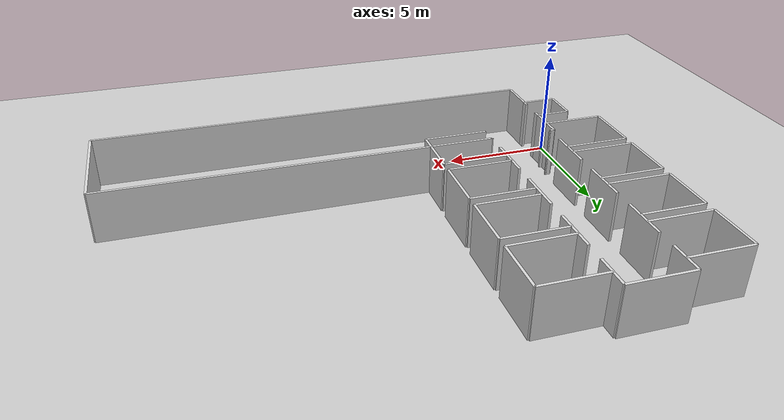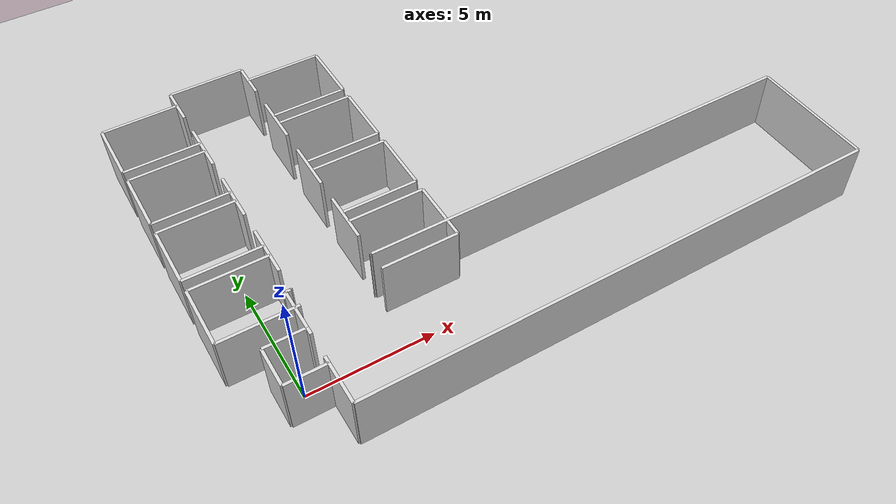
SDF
<?xml version="1.0" ?>
<sdf version="1.6">
  <world name="kku_f2">
    <include><uri>model://sun</uri></include>
    <include><uri>model://ground_plane</uri></include>
    <physics name="default_physics" default="0" type="ode">
      <max_step_size>0.001</max_step_size>
      <real_time_factor>1.0</real_time_factor>
      <real_time_update_rate>1000</real_time_update_rate>
    </physics>
    <scene>
      <ambient>0.4 0.4 0.4 1</ambient>
      <background>0.7 0.7 0.7 1</background>
      <shadows>true</shadows>
    </scene>
    <!-- 동적 장애물(보행자)을 set_entity_state 로 위치제어하기 위한 플러그인 -->
    <plugin name="gazebo_ros_state" filename="libgazebo_ros_state.so">
      <ros><namespace>/gazebo</namespace></ros>
      <update_rate>50.0</update_rate>
    </plugin>
    <model name="kku_f2_building">
      <static>true</static>
      <link name="walls">
        <collision name="f2_elev_n">
          <pose>0 0.8 1.2 0 0 0</pose>
          <geometry><box><size>1.6 0.12 2.4</size></box></geometry>
        </collision>
        <visual name="f2_elev_n_v">
          <pose>0 0.8 1.2 0 0 0</pose>
          <geometry><box><size>1.6 0.12 2.4</size></box></geometry>
          <material><ambient>0.7 0.7 0.7 1</ambient><diffuse>0.85 0.85 0.85 1</diffuse></material>
        </visual>
        <collision name="f2_elev_s">
          <pose>0 -0.8 1.2 0 0 0</pose>
          <geometry><box><size>1.6 0.12 2.4</size></box></geometry>
        </collision>
        <visual name="f2_elev_s_v">
          <pose>0 -0.8 1.2 0 0 0</pose>
          <geometry><box><size>1.6 0.12 2.4</size></box></geometry>
          <material><ambient>0.7 0.7 0.7 1</ambient><diffuse>0.85 0.85 0.85 1</diffuse></material>
        </visual>
        <collision name="f2_elev_w">
          <pose>-0.8 0 1.2 0 0 0</pose>
          <geometry><box><size>0.12 1.6 2.4</size></box></geometry>
        </collision>
        <visual name="f2_elev_w_v">
          <pose>-0.8 0 1.2 0 0 0</pose>
          <geometry><box><size>0.12 1.6 2.4</size></box></geometry>
          <material><ambient>0.7 0.7 0.7 1</ambient><diffuse>0.85 0.85 0.85 1</diffuse></material>
        </visual>
        <collision name="f2_elev_e_s">
          <pose>0.8 -0.65 1.2 0 0 0</pose>
          <geometry><box><size>0.12 0.3 2.4</size></box></geometry>
        </collision>
        <visual name="f2_elev_e_s_v">
          <pose>0.8 -0.65 1.2 0 0 0</pose>
          <geometry><box><size>0.12 0.3 2.4</size></box></geometry>
          <material><ambient>0.7 0.7 0.7 1</ambient><diffuse>0.85 0.85 0.85 1</diffuse></material>
        </visual>
        <collision name="f2_elev_e_n">
          <pose>0.8 0.65 1.2 0 0 0</pose>
          <geometry><box><size>0.12 0.3 2.4</size></box></geometry>
        </collision>
        <visual name="f2_elev_e_n_v">
          <pose>0.8 0.65 1.2 0 0 0</pose>
          <geometry><box><size>0.12 0.3 2.4</size></box></geometry>
          <material><ambient>0.7 0.7 0.7 1</ambient><diffuse>0.85 0.85 0.85 1</diffuse></material>
        </visual>
        <collision name="f2_shoulder_n">
          <pose>0.8 1.65 1.2 0 0 0</pose>
          <geometry><box><size>0.12 1.7 2.4</size></box></geometry>
        </collision>
        <visual name="f2_shoulder_n_v">
          <pose>0.8 1.65 1.2 0 0 0</pose>
          <geometry><box><size>0.12 1.7 2.4</size></box></geometry>
          <material><ambient>0.7 0.7 0.7 1</ambient><diffuse>0.85 0.85 0.85 1</diffuse></material>
        </visual>
        <collision name="f2_shoulder_s">
          <pose>0.8 -1.65 1.2 0 0 0</pose>
          <geometry><box><size>0.12 1.7 2.4</size></box></geometry>
        </collision>
        <visual name="f2_shoulder_s_v">
          <pose>0.8 -1.65 1.2 0 0 0</pose>
          <geometry><box><size>0.12 1.7 2.4</size></box></geometry>
          <material><ambient>0.7 0.7 0.7 1</ambient><diffuse>0.85 0.85 0.85 1</diffuse></material>
        </visual>
        <collision name="f2_rc_n_w">
          <pose>0.9 2.5 1.2 0 0 0</pose>
          <geometry><box><size>0.2 0.12 2.4</size></box></geometry>
        </collision>
        <visual name="f2_rc_n_w_v">
          <pose>0.9 2.5 1.2 0 0 0</pose>
          <geometry><box><size>0.2 0.12 2.4</size></box></geometry>
          <material><ambient>0.7 0.7 0.7 1</ambient><diffuse>0.85 0.85 0.85 1</diffuse></material>
        </visual>
        <collision name="f2_rc_n_e">
          <pose>13 2.5 1.2 0 0 0</pose>
          <geometry><box><size>18 0.12 2.4</size></box></geometry>
        </collision>
        <visual name="f2_rc_n_e_v">
          <pose>13 2.5 1.2 0 0 0</pose>
          <geometry><box><size>18 0.12 2.4</size></box></geometry>
          <material><ambient>0.7 0.7 0.7 1</ambient><diffuse>0.85 0.85 0.85 1</diffuse></material>
        </visual>
        <collision name="f2_rc_s">
          <pose>11.4 -2.5 1.2 0 0 0</pose>
          <geometry><box><size>21.2 0.12 2.4</size></box></geometry>
        </collision>
        <visual name="f2_rc_s_v">
          <pose>11.4 -2.5 1.2 0 0 0</pose>
          <geometry><box><size>21.2 0.12 2.4</size></box></geometry>
          <material><ambient>0.7 0.7 0.7 1</ambient><diffuse>0.85 0.85 0.85 1</diffuse></material>
        </visual>
        <collision name="f2_rc_end">
          <pose>22 0 1.2 0 0 0</pose>
          <geometry><box><size>0.12 5 2.4</size></box></geometry>
        </collision>
        <visual name="f2_rc_end_v">
          <pose>22 0 1.2 0 0 0</pose>
          <geometry><box><size>0.12 5 2.4</size></box></geometry>
          <material><ambient>0.7 0.7 0.7 1</ambient><diffuse>0.85 0.85 0.85 1</diffuse></material>
        </visual>
        <collision name="f2_bc_w_0">
          <pose>1 2.525 1.2 0 0 0</pose>
          <geometry><box><size>0.12 0.05 2.4</size></box></geometry>
        </collision>
        <visual name="f2_bc_w_0_v">
          <pose>1 2.525 1.2 0 0 0</pose>
          <geometry><box><size>0.12 0.05 2.4</size></box></geometry>
          <material><ambient>0.7 0.7 0.7 1</ambient><diffuse>0.85 0.85 0.85 1</diffuse></material>
        </visual>
        <collision name="f2_bc_w_1">
          <pose>1 4.5 1.2 0 0 0</pose>
          <geometry><box><size>0.12 2.1 2.4</size></box></geometry>
        </collision>
        <visual name="f2_bc_w_1_v">
          <pose>1 4.5 1.2 0 0 0</pose>
          <geometry><box><size>0.12 2.1 2.4</size></box></geometry>
          <material><ambient>0.7 0.7 0.7 1</ambient><diffuse>0.85 0.85 0.85 1</diffuse></material>
        </visual>
        <collision name="f2_bc_w_2">
          <pose>1 7.5 1.2 0 0 0</pose>
          <geometry><box><size>0.12 2.1 2.4</size></box></geometry>
        </collision>
        <visual name="f2_bc_w_2_v">
          <pose>1 7.5 1.2 0 0 0</pose>
          <geometry><box><size>0.12 2.1 2.4</size></box></geometry>
          <material><ambient>0.7 0.7 0.7 1</ambient><diffuse>0.85 0.85 0.85 1</diffuse></material>
        </visual>
        <collision name="f2_bc_w_3">
          <pose>1 10.5 1.2 0 0 0</pose>
          <geometry><box><size>0.12 2.1 2.4</size></box></geometry>
        </collision>
        <visual name="f2_bc_w_3_v">
          <pose>1 10.5 1.2 0 0 0</pose>
          <geometry><box><size>0.12 2.1 2.4</size></box></geometry>
          <material><ambient>0.7 0.7 0.7 1</ambient><diffuse>0.85 0.85 0.85 1</diffuse></material>
        </visual>
        <collision name="f2_bc_w_4">
          <pose>1 13.22 1.2 0 0 0</pose>
          <geometry><box><size>0.12 1.55 2.4</size></box></geometry>
        </collision>
        <visual name="f2_bc_w_4_v">
          <pose>1 13.22 1.2 0 0 0</pose>
          <geometry><box><size>0.12 1.55 2.4</size></box></geometry>
          <material><ambient>0.7 0.7 0.7 1</ambient><diffuse>0.85 0.85 0.85 1</diffuse></material>
        </visual>
        <collision name="f2_bc_e_0">
          <pose>4 2.525 1.2 0 0 0</pose>
          <geometry><box><size>0.12 0.05 2.4</size></box></geometry>
        </collision>
        <visual name="f2_bc_e_0_v">
          <pose>4 2.525 1.2 0 0 0</pose>
          <geometry><box><size>0.12 0.05 2.4</size></box></geometry>
          <material><ambient>0.7 0.7 0.7 1</ambient><diffuse>0.85 0.85 0.85 1</diffuse></material>
        </visual>
        <collision name="f2_bc_e_1">
          <pose>4 4.5 1.2 0 0 0</pose>
          <geometry><box><size>0.12 2.1 2.4</size></box></geometry>
        </collision>
        <visual name="f2_bc_e_1_v">
          <pose>4 4.5 1.2 0 0 0</pose>
          <geometry><box><size>0.12 2.1 2.4</size></box></geometry>
          <material><ambient>0.7 0.7 0.7 1</ambient><diffuse>0.85 0.85 0.85 1</diffuse></material>
        </visual>
        <collision name="f2_bc_e_2">
          <pose>4 7.5 1.2 0 0 0</pose>
          <geometry><box><size>0.12 2.1 2.4</size></box></geometry>
        </collision>
        <visual name="f2_bc_e_2_v">
          <pose>4 7.5 1.2 0 0 0</pose>
          <geometry><box><size>0.12 2.1 2.4</size></box></geometry>
          <material><ambient>0.7 0.7 0.7 1</ambient><diffuse>0.85 0.85 0.85 1</diffuse></material>
        </visual>
        <collision name="f2_bc_e_3">
          <pose>4 10.5 1.2 0 0 0</pose>
          <geometry><box><size>0.12 2.1 2.4</size></box></geometry>
        </collision>
        <visual name="f2_bc_e_3_v">
          <pose>4 10.5 1.2 0 0 0</pose>
          <geometry><box><size>0.12 2.1 2.4</size></box></geometry>
          <material><ambient>0.7 0.7 0.7 1</ambient><diffuse>0.85 0.85 0.85 1</diffuse></material>
        </visual>
        <collision name="f2_bc_e_4">
          <pose>4 13.22 1.2 0 0 0</pose>
          <geometry><box><size>0.12 1.55 2.4</size></box></geometry>
        </collision>
        <visual name="f2_bc_e_4_v">
          <pose>4 13.22 1.2 0 0 0</pose>
          <geometry><box><size>0.12 1.55 2.4</size></box></geometry>
          <material><ambient>0.7 0.7 0.7 1</ambient><diffuse>0.85 0.85 0.85 1</diffuse></material>
        </visual>
        <collision name="f2_bc_end">
          <pose>2.5 14 1.2 0 0 0</pose>
          <geometry><box><size>3 0.12 2.4</size></box></geometry>
        </collision>
        <visual name="f2_bc_end_v">
          <pose>2.5 14 1.2 0 0 0</pose>
          <geometry><box><size>3 0.12 2.4</size></box></geometry>
          <material><ambient>0.7 0.7 0.7 1</ambient><diffuse>0.85 0.85 0.85 1</diffuse></material>
        </visual>
        <collision name="f2_r201_s">
          <pose>-0.5 1.75 1.2 0 0 0</pose>
          <geometry><box><size>3 0.12 2.4</size></box></geometry>
        </collision>
        <visual name="f2_r201_s_v">
          <pose>-0.5 1.75 1.2 0 0 0</pose>
          <geometry><box><size>3 0.12 2.4</size></box></geometry>
          <material><ambient>0.7 0.7 0.7 1</ambient><diffuse>0.85 0.85 0.85 1</diffuse></material>
        </visual>
        <collision name="f2_r201_n">
          <pose>-0.5 4.25 1.2 0 0 0</pose>
          <geometry><box><size>3 0.12 2.4</size></box></geometry>
        </collision>
        <visual name="f2_r201_n_v">
          <pose>-0.5 4.25 1.2 0 0 0</pose>
          <geometry><box><size>3 0.12 2.4</size></box></geometry>
          <material><ambient>0.7 0.7 0.7 1</ambient><diffuse>0.85 0.85 0.85 1</diffuse></material>
        </visual>
        <collision name="f2_r201_far">
          <pose>-2 3 1.2 0 0 0</pose>
          <geometry><box><size>0.12 2.5 2.4</size></box></geometry>
        </collision>
        <visual name="f2_r201_far_v">
          <pose>-2 3 1.2 0 0 0</pose>
          <geometry><box><size>0.12 2.5 2.4</size></box></geometry>
          <material><ambient>0.7 0.7 0.7 1</ambient><diffuse>0.85 0.85 0.85 1</diffuse></material>
        </visual>
        <collision name="f2_r202_s">
          <pose>5.5 1.75 1.2 0 0 0</pose>
          <geometry><box><size>3 0.12 2.4</size></box></geometry>
        </collision>
        <visual name="f2_r202_s_v">
          <pose>5.5 1.75 1.2 0 0 0</pose>
          <geometry><box><size>3 0.12 2.4</size></box></geometry>
          <material><ambient>0.7 0.7 0.7 1</ambient><diffuse>0.85 0.85 0.85 1</diffuse></material>
        </visual>
        <collision name="f2_r202_n">
          <pose>5.5 4.25 1.2 0 0 0</pose>
          <geometry><box><size>3 0.12 2.4</size></box></geometry>
        </collision>
        <visual name="f2_r202_n_v">
          <pose>5.5 4.25 1.2 0 0 0</pose>
          <geometry><box><size>3 0.12 2.4</size></box></geometry>
          <material><ambient>0.7 0.7 0.7 1</ambient><diffuse>0.85 0.85 0.85 1</diffuse></material>
        </visual>
        <collision name="f2_r202_far">
          <pose>7 3 1.2 0 0 0</pose>
          <geometry><box><size>0.12 2.5 2.4</size></box></geometry>
        </collision>
        <visual name="f2_r202_far_v">
          <pose>7 3 1.2 0 0 0</pose>
          <geometry><box><size>0.12 2.5 2.4</size></box></geometry>
          <material><ambient>0.7 0.7 0.7 1</ambient><diffuse>0.85 0.85 0.85 1</diffuse></material>
        </visual>
        <collision name="f2_r203_s">
          <pose>-0.5 4.75 1.2 0 0 0</pose>
          <geometry><box><size>3 0.12 2.4</size></box></geometry>
        </collision>
        <visual name="f2_r203_s_v">
          <pose>-0.5 4.75 1.2 0 0 0</pose>
          <geometry><box><size>3 0.12 2.4</size></box></geometry>
          <material><ambient>0.7 0.7 0.7 1</ambient><diffuse>0.85 0.85 0.85 1</diffuse></material>
        </visual>
        <collision name="f2_r203_n">
          <pose>-0.5 7.25 1.2 0 0 0</pose>
          <geometry><box><size>3 0.12 2.4</size></box></geometry>
        </collision>
        <visual name="f2_r203_n_v">
          <pose>-0.5 7.25 1.2 0 0 0</pose>
          <geometry><box><size>3 0.12 2.4</size></box></geometry>
          <material><ambient>0.7 0.7 0.7 1</ambient><diffuse>0.85 0.85 0.85 1</diffuse></material>
        </visual>
        <collision name="f2_r203_far">
          <pose>-2 6 1.2 0 0 0</pose>
          <geometry><box><size>0.12 2.5 2.4</size></box></geometry>
        </collision>
        <visual name="f2_r203_far_v">
          <pose>-2 6 1.2 0 0 0</pose>
          <geometry><box><size>0.12 2.5 2.4</size></box></geometry>
          <material><ambient>0.7 0.7 0.7 1</ambient><diffuse>0.85 0.85 0.85 1</diffuse></material>
        </visual>
        <collision name="f2_r204_s">
          <pose>5.5 4.75 1.2 0 0 0</pose>
          <geometry><box><size>3 0.12 2.4</size></box></geometry>
        </collision>
        <visual name="f2_r204_s_v">
          <pose>5.5 4.75 1.2 0 0 0</pose>
          <geometry><box><size>3 0.12 2.4</size></box></geometry>
          <material><ambient>0.7 0.7 0.7 1</ambient><diffuse>0.85 0.85 0.85 1</diffuse></material>
        </visual>
        <collision name="f2_r204_n">
          <pose>5.5 7.25 1.2 0 0 0</pose>
          <geometry><box><size>3 0.12 2.4</size></box></geometry>
        </collision>
        <visual name="f2_r204_n_v">
          <pose>5.5 7.25 1.2 0 0 0</pose>
          <geometry><box><size>3 0.12 2.4</size></box></geometry>
          <material><ambient>0.7 0.7 0.7 1</ambient><diffuse>0.85 0.85 0.85 1</diffuse></material>
        </visual>
        <collision name="f2_r204_far">
          <pose>7 6 1.2 0 0 0</pose>
          <geometry><box><size>0.12 2.5 2.4</size></box></geometry>
        </collision>
        <visual name="f2_r204_far_v">
          <pose>7 6 1.2 0 0 0</pose>
          <geometry><box><size>0.12 2.5 2.4</size></box></geometry>
          <material><ambient>0.7 0.7 0.7 1</ambient><diffuse>0.85 0.85 0.85 1</diffuse></material>
        </visual>
        <collision name="f2_r205_s">
          <pose>-0.5 7.75 1.2 0 0 0</pose>
          <geometry><box><size>3 0.12 2.4</size></box></geometry>
        </collision>
        <visual name="f2_r205_s_v">
          <pose>-0.5 7.75 1.2 0 0 0</pose>
          <geometry><box><size>3 0.12 2.4</size></box></geometry>
          <material><ambient>0.7 0.7 0.7 1</ambient><diffuse>0.85 0.85 0.85 1</diffuse></material>
        </visual>
        <collision name="f2_r205_n">
          <pose>-0.5 10.25 1.2 0 0 0</pose>
          <geometry><box><size>3 0.12 2.4</size></box></geometry>
        </collision>
        <visual name="f2_r205_n_v">
          <pose>-0.5 10.25 1.2 0 0 0</pose>
          <geometry><box><size>3 0.12 2.4</size></box></geometry>
          <material><ambient>0.7 0.7 0.7 1</ambient><diffuse>0.85 0.85 0.85 1</diffuse></material>
        </visual>
        <collision name="f2_r205_far">
          <pose>-2 9 1.2 0 0 0</pose>
          <geometry><box><size>0.12 2.5 2.4</size></box></geometry>
        </collision>
        <visual name="f2_r205_far_v">
          <pose>-2 9 1.2 0 0 0</pose>
          <geometry><box><size>0.12 2.5 2.4</size></box></geometry>
          <material><ambient>0.7 0.7 0.7 1</ambient><diffuse>0.85 0.85 0.85 1</diffuse></material>
        </visual>
        <collision name="f2_r206_s">
          <pose>5.5 7.75 1.2 0 0 0</pose>
          <geometry><box><size>3 0.12 2.4</size></box></geometry>
        </collision>
        <visual name="f2_r206_s_v">
          <pose>5.5 7.75 1.2 0 0 0</pose>
          <geometry><box><size>3 0.12 2.4</size></box></geometry>
          <material><ambient>0.7 0.7 0.7 1</ambient><diffuse>0.85 0.85 0.85 1</diffuse></material>
        </visual>
        <collision name="f2_r206_n">
          <pose>5.5 10.25 1.2 0 0 0</pose>
          <geometry><box><size>3 0.12 2.4</size></box></geometry>
        </collision>
        <visual name="f2_r206_n_v">
          <pose>5.5 10.25 1.2 0 0 0</pose>
          <geometry><box><size>3 0.12 2.4</size></box></geometry>
          <material><ambient>0.7 0.7 0.7 1</ambient><diffuse>0.85 0.85 0.85 1</diffuse></material>
        </visual>
        <collision name="f2_r206_far">
          <pose>7 9 1.2 0 0 0</pose>
          <geometry><box><size>0.12 2.5 2.4</size></box></geometry>
        </collision>
        <visual name="f2_r206_far_v">
          <pose>7 9 1.2 0 0 0</pose>
          <geometry><box><size>0.12 2.5 2.4</size></box></geometry>
          <material><ambient>0.7 0.7 0.7 1</ambient><diffuse>0.85 0.85 0.85 1</diffuse></material>
        </visual>
        <collision name="f2_r207_s">
          <pose>-0.5 10.75 1.2 0 0 0</pose>
          <geometry><box><size>3 0.12 2.4</size></box></geometry>
        </collision>
        <visual name="f2_r207_s_v">
          <pose>-0.5 10.75 1.2 0 0 0</pose>
          <geometry><box><size>3 0.12 2.4</size></box></geometry>
          <material><ambient>0.7 0.7 0.7 1</ambient><diffuse>0.85 0.85 0.85 1</diffuse></material>
        </visual>
        <collision name="f2_r207_n">
          <pose>-0.5 13.25 1.2 0 0 0</pose>
          <geometry><box><size>3 0.12 2.4</size></box></geometry>
        </collision>
        <visual name="f2_r207_n_v">
          <pose>-0.5 13.25 1.2 0 0 0</pose>
          <geometry><box><size>3 0.12 2.4</size></box></geometry>
          <material><ambient>0.7 0.7 0.7 1</ambient><diffuse>0.85 0.85 0.85 1</diffuse></material>
        </visual>
        <collision name="f2_r207_far">
          <pose>-2 12 1.2 0 0 0</pose>
          <geometry><box><size>0.12 2.5 2.4</size></box></geometry>
        </collision>
        <visual name="f2_r207_far_v">
          <pose>-2 12 1.2 0 0 0</pose>
          <geometry><box><size>0.12 2.5 2.4</size></box></geometry>
          <material><ambient>0.7 0.7 0.7 1</ambient><diffuse>0.85 0.85 0.85 1</diffuse></material>
        </visual>
        <collision name="f2_r208_s">
          <pose>5.5 10.75 1.2 0 0 0</pose>
          <geometry><box><size>3 0.12 2.4</size></box></geometry>
        </collision>
        <visual name="f2_r208_s_v">
          <pose>5.5 10.75 1.2 0 0 0</pose>
          <geometry><box><size>3 0.12 2.4</size></box></geometry>
          <material><ambient>0.7 0.7 0.7 1</ambient><diffuse>0.85 0.85 0.85 1</diffuse></material>
        </visual>
        <collision name="f2_r208_n">
          <pose>5.5 13.25 1.2 0 0 0</pose>
          <geometry><box><size>3 0.12 2.4</size></box></geometry>
        </collision>
        <visual name="f2_r208_n_v">
          <pose>5.5 13.25 1.2 0 0 0</pose>
          <geometry><box><size>3 0.12 2.4</size></box></geometry>
          <material><ambient>0.7 0.7 0.7 1</ambient><diffuse>0.85 0.85 0.85 1</diffuse></material>
        </visual>
        <collision name="f2_r208_far">
          <pose>7 12 1.2 0 0 0</pose>
          <geometry><box><size>0.12 2.5 2.4</size></box></geometry>
        </collision>
        <visual name="f2_r208_far_v">
          <pose>7 12 1.2 0 0 0</pose>
          <geometry><box><size>0.12 2.5 2.4</size></box></geometry>
          <material><ambient>0.7 0.7 0.7 1</ambient><diffuse>0.85 0.85 0.85 1</diffuse></material>
        </visual>
      </link>
    </model>
  </world>
</sdf>
